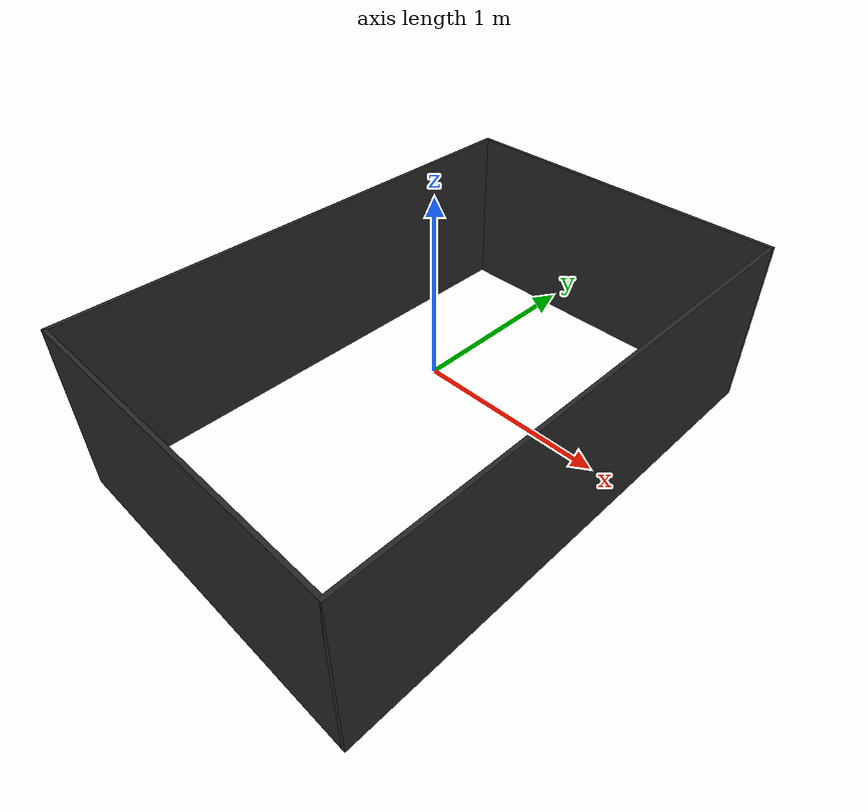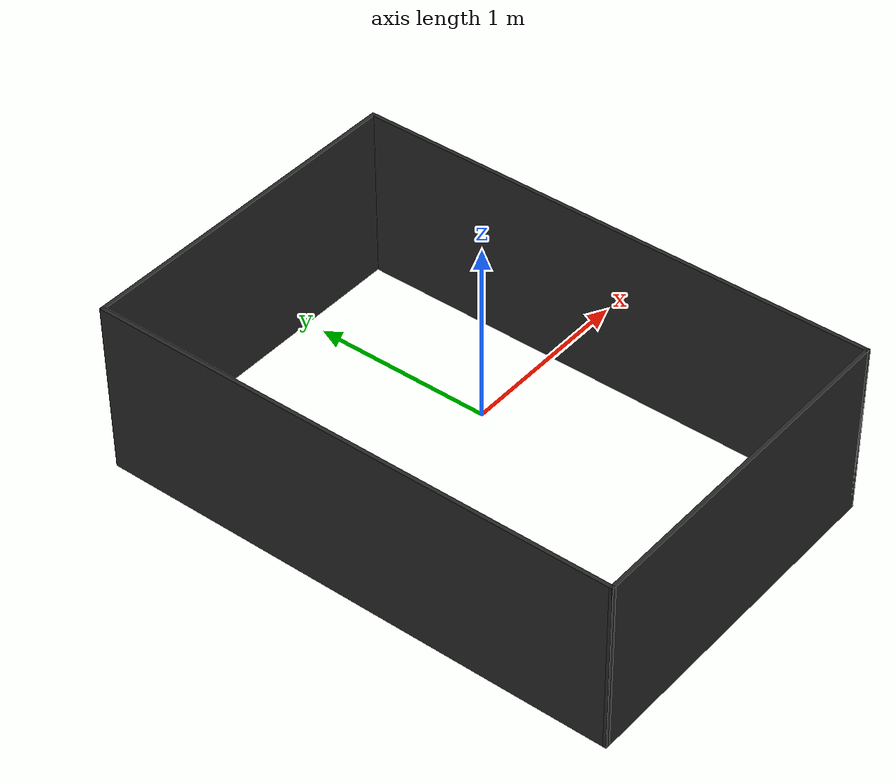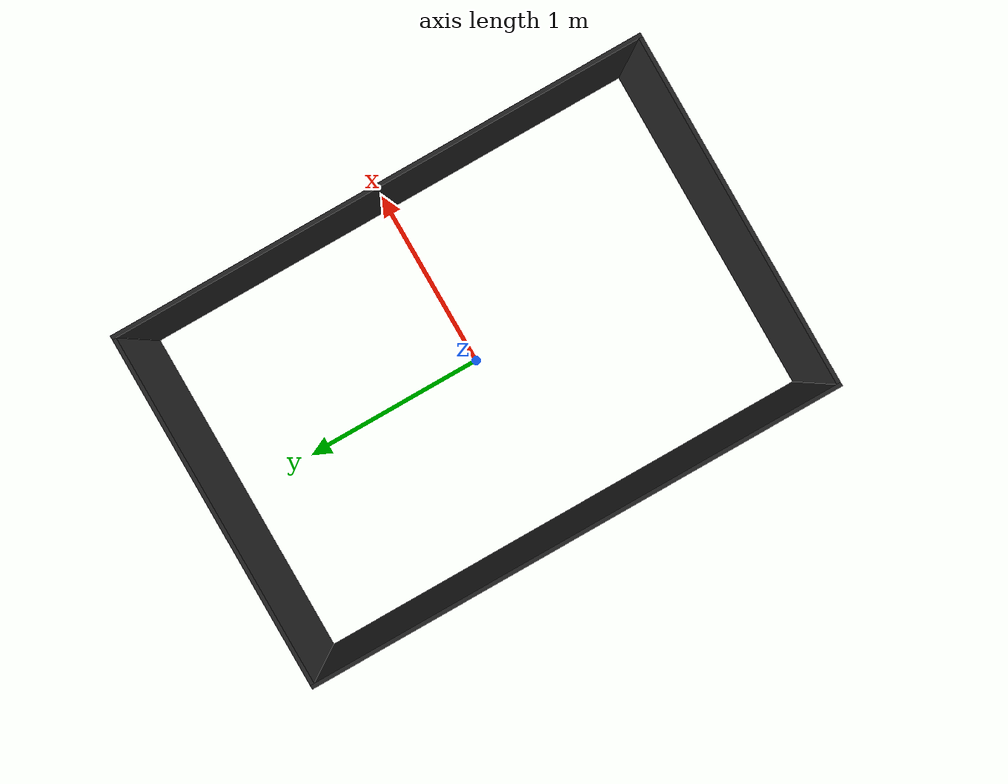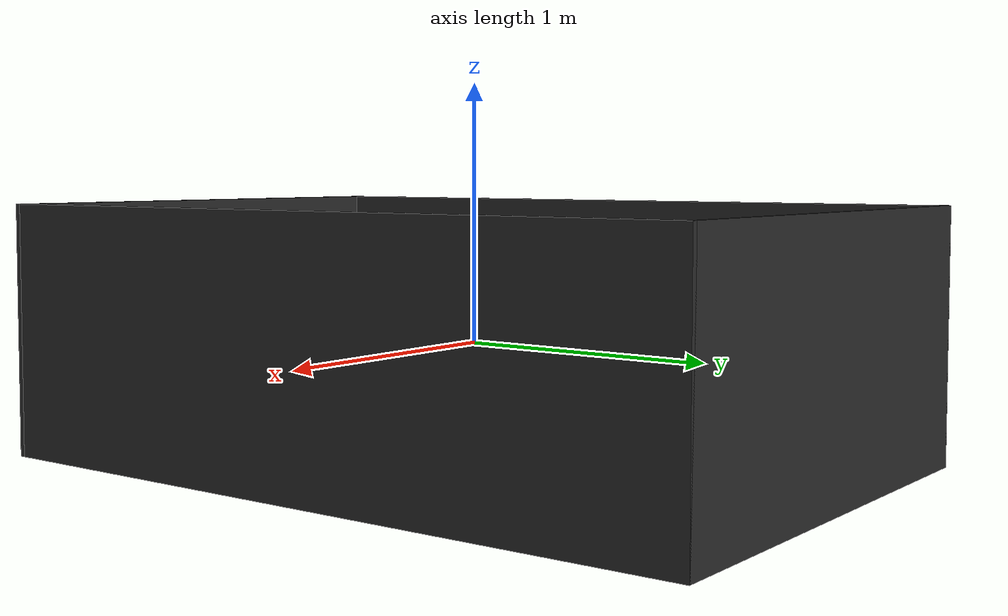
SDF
<?xml version="1.0" ?>
<sdf version="1.9">
    <model name="wall">
        <static>true</static>
        <link name="wall_border">
            <inertial>
                <mass>50</mass>
                <inertia>
                    <ixx>1</ixx>
                    <iyy>1</iyy>
                    <izz>1</izz>
                </inertia>
            </inertial>

            <!-- Longue +X -->
            <collision name="border_long_posX_collision">
                <pose>0.989 0 0.035 0 0 0</pose>
                <geometry><box><size>0.022 3.0 1</size></box></geometry>
                <surface><friction><ode><mu>0.9</mu><mu2>0.9</mu2></ode></friction></surface>
            </collision>
            <visual name="border_long_posX_visual">
                <pose>0.989 0 0.035 0 0 0</pose>
                <geometry><box><size>0.022 3.0 1</size></box></geometry>
                <material><diffuse>0.15 0.15 0.15 1</diffuse></material>
            </visual>

            <!-- Longue -X -->
            <collision name="border_long_negX_collision">
                <pose>-0.989 0 0.035 0 0 0</pose>
                <geometry><box><size>0.022 3.0 1</size></box></geometry>
                <surface><friction><ode><mu>0.9</mu><mu2>0.9</mu2></ode></friction></surface>
            </collision>
            <visual name="border_long_negX_visual">
                <pose>-0.989 0 0.035 0 0 0</pose>
                <geometry><box><size>0.022 3.0 1</size></box></geometry>
                <material><diffuse>0.15 0.15 0.15 1</diffuse></material>
            </visual>

            <!-- Courte +Y -->
            <collision name="border_short_posY_collision">
                <pose>0 1.489 0.035 0 0 0</pose>
                <geometry><box><size>2.0 0.022 1</size></box></geometry>
                <surface><friction><ode><mu>0.9</mu><mu2>0.9</mu2></ode></friction></surface>
            </collision>
            <visual name="border_short_posY_visual">
                <pose>0 1.489 0.035 0 0 0</pose>
                <geometry><box><size>2.0 0.022 1</size></box></geometry>
                <material><diffuse>0.15 0.15 0.15 1</diffuse></material>
            </visual>

            <!-- Courte -Y -->
            <collision name="border_short_negY_collision">
                <pose>0 -1.489 0.035 0 0 0</pose>
                <geometry><box><size>2.0 0.022 1</size></box></geometry>
                <surface><friction><ode><mu>0.9</mu><mu2>0.9</mu2></ode></friction></surface>
            </collision>
            <visual name="border_short_negY_visual">
                <pose>0 -1.489 0.035 0 0 0</pose>
                <geometry><box><size>2.0 0.022 1</size></box></geometry>
                <material><diffuse>0.15 0.15 0.15 1</diffuse></material>
            </visual>
        </link>
    </model>
</sdf>
